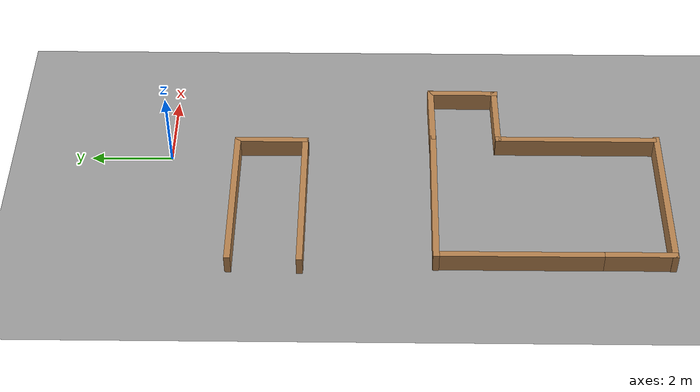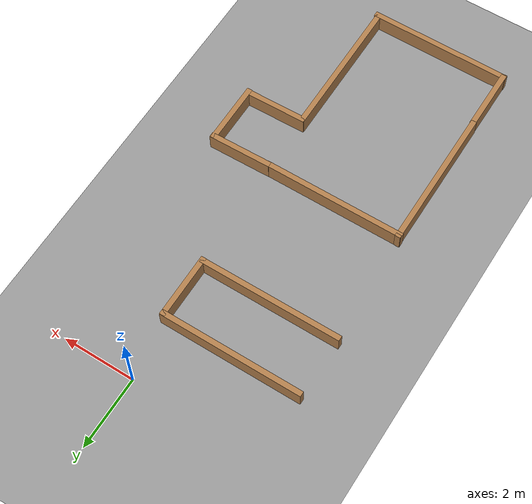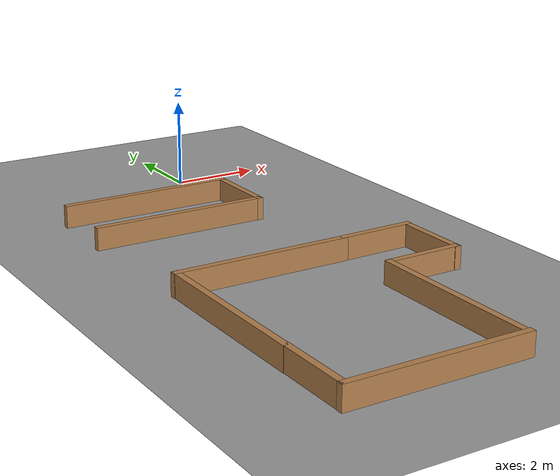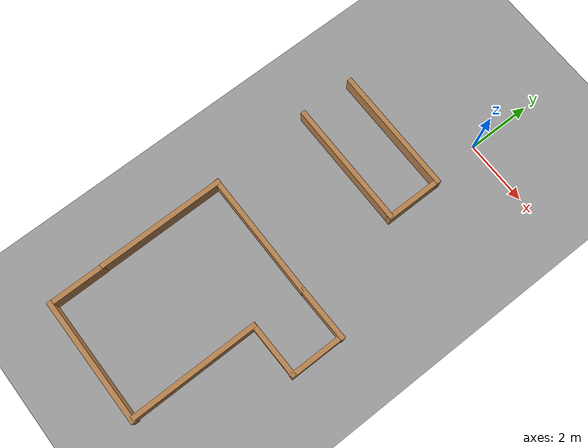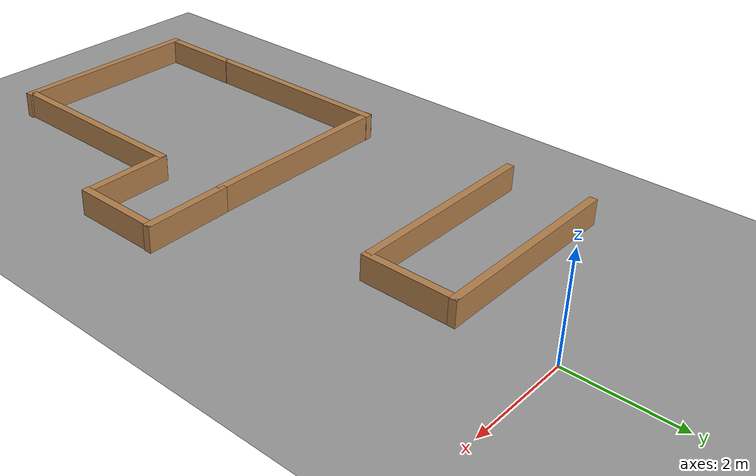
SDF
<sdf version="1.6">
 <world name="default">
  <light name="sun" type="directional">
   <pose>0 0 10 0 -0 0</pose>
   <diffuse>0.8 0.8 0.8 1</diffuse>
   <specular>0.2 0.2 0.2 1</specular>
   <attenuation>
    <range>1000</range>
    <constant>0.9</constant>
    <linear>0.01</linear>
    <quadratic>0.001</quadratic>
   </attenuation>
   <direction>0.5 0.1 -0.9</direction>
  </light>
  <scene><ambient>0.4 0.4 0.4 1</ambient><background>0.7 0.7 0.7 1</background><shadows>1</shadows></scene>
  <physics name="default_physics" default="0" type="ode">
   <max_step_size>0.01</max_step_size>
   <real_time_factor>1</real_time_factor>
   <real_time_update_rate>100</real_time_update_rate>
  </physics>
  <model name="ground_plane_0">
   <static>1</static>
   <link name="link">
    <collision name="collision">
     <geometry><plane><normal>0 0 1</normal><size>100 100</size></plane></geometry>
     <surface><friction><ode><mu>100</mu><mu2>50</mu2></ode></friction></surface>
    </collision>
    <visual name="visual">
     <cast_shadows>0</cast_shadows>
     <geometry><plane><normal>0 0 1</normal><size>100 100</size></plane></geometry>
     <material>
      <script><uri>file://media/materials/scripts/gazebo.material</uri><name>Gazebo/Grey</name></script>
     </material>
    </visual>
    <velocity_decay><linear>0</linear><angular>0</angular></velocity_decay>
   </link>
   <pose>0.497681 0 0 0 -0 0</pose>
  </model>
  <gravity>0 0 -9.8</gravity>
  <magnetic_field>6e-06 2.3e-05 -4.2e-05</magnetic_field>
  <atmosphere type="adiabatic"/>
  <spherical_coordinates>
   <surface_model>EARTH_WGS84</surface_model>
   <latitude_deg>0</latitude_deg>
   <longitude_deg>0</longitude_deg>
   <elevation>0</elevation>
   <heading_deg>0</heading_deg>
  </spherical_coordinates>
  <model name="turtlebot3_square_0">
   <link name="Wall_0">
    <pose>0 0.848118 0 0 -0 0</pose>
    <visual name="Wall_0_Visual">
     <pose>0 0 0.25 0 -0 0</pose>
     <geometry><box><size>4 0.15 0.5</size></box></geometry>
     <material>
      <script><uri>file://media/materials/scripts/gazebo.material</uri><name>Gazebo/Wood</name></script>
      <ambient>1 1 1 1</ambient>
      <diffuse>1 1 1 1</diffuse>
      <specular>0.2 0.2 0.2 1</specular>
      <emissive>0 0 0 1</emissive>
     </material>
    </visual>
    <collision name="Wall_0_Collision">
     <pose>0 0 0.25 0 -0 0</pose>
     <geometry><box><size>4 0.15 0.5</size></box></geometry>
     <surface>
      <friction>
       <ode><mu>1</mu><mu2>1</mu2><fdir1>0 0 0</fdir1><slip1>0</slip1><slip2>0</slip2></ode>
       <torsional>
        <coefficient>1</coefficient>
        <patch_radius>0</patch_radius>
        <surface_radius>0</surface_radius>
        <use_patch_radius>1</use_patch_radius>
        <ode><slip>0</slip></ode>
       </torsional>
      </friction>
      <bounce><restitution_coefficient>0</restitution_coefficient><threshold>1e+06</threshold></bounce>
      <contact>
       <collide_without_contact>0</collide_without_contact>
       <collide_without_contact_bitmask>1</collide_without_contact_bitmask>
       <collide_bitmask>1</collide_bitmask>
       <ode>
        <soft_cfm>0</soft_cfm>
        <soft_erp>0.2</soft_erp>
        <kp>1e+13</kp>
        <kd>1</kd>
        <max_vel>0.01</max_vel>
        <min_depth>0</min_depth>
       </ode>
       <bullet>
        <split_impulse>1</split_impulse>
        <split_impulse_penetration_threshold>-0.01</split_impulse_penetration_threshold>
        <soft_cfm>0</soft_cfm>
        <soft_erp>0.2</soft_erp>
        <kp>1e+13</kp>
        <kd>1</kd>
       </bullet>
      </contact>
     </surface>
    </collision>
   </link>
   <link name="Wall_3">
    <pose>-0.03332 -0.833491 0 0 -0 0</pose>
    <visual name="Wall_3_Visual">
     <pose>0 0 0.25 0 -0 0</pose>
     <geometry><box><size>4 0.15 0.5</size></box></geometry>
     <material>
      <script><uri>file://media/materials/scripts/gazebo.material</uri><name>Gazebo/Wood</name></script>
      <ambient>1 1 1 1</ambient>
      <diffuse>1 1 1 1</diffuse>
      <specular>0.2 0.2 0.2 1</specular>
      <emissive>0 0 0 1</emissive>
     </material>
    </visual>
    <collision name="Wall_3_Collision">
     <pose>0 0 0.25 0 -0 0</pose>
     <geometry><box><size>4 0.15 0.5</size></box></geometry>
     <surface>
      <friction>
       <ode><mu>1</mu><mu2>1</mu2><fdir1>0 0 0</fdir1><slip1>0</slip1><slip2>0</slip2></ode>
       <torsional>
        <coefficient>1</coefficient>
        <patch_radius>0</patch_radius>
        <surface_radius>0</surface_radius>
        <use_patch_radius>1</use_patch_radius>
        <ode><slip>0</slip></ode>
       </torsional>
      </friction>
      <bounce><restitution_coefficient>0</restitution_coefficient><threshold>1e+06</threshold></bounce>
      <contact>
       <collide_without_contact>0</collide_without_contact>
       <collide_without_contact_bitmask>1</collide_without_contact_bitmask>
       <collide_bitmask>1</collide_bitmask>
       <ode>
        <soft_cfm>0</soft_cfm>
        <soft_erp>0.2</soft_erp>
        <kp>1e+13</kp>
        <kd>1</kd>
        <max_vel>0.01</max_vel>
        <min_depth>0</min_depth>
       </ode>
       <bullet>
        <split_impulse>1</split_impulse>
        <split_impulse_penetration_threshold>-0.01</split_impulse_penetration_threshold>
        <soft_cfm>0</soft_cfm>
        <soft_erp>0.2</soft_erp>
        <kp>1e+13</kp>
        <kd>1</kd>
       </bullet>
      </contact>
     </surface>
    </collision>
   </link>
   <link name="Wall_4">
    <pose>1.925 0 0 0 -0 1.5708</pose>
    <inertial>
     <inertia><ixx>nan</ixx><ixy>0</ixy><ixz>0</ixz><iyy>nan</iyy><iyz>0</iyz><izz>nan</izz></inertia>
     <mass>0</mass>
    </inertial>
    <visual name="Wall_4_Visual">
     <pose>0 0 0.25 0 -0 0</pose>
     <geometry><box><size>1.82627 0.15 0.5</size></box></geometry>
     <material>
      <script><uri>file://media/materials/scripts/gazebo.material</uri><name>Gazebo/Wood</name></script>
      <ambient>1 1 1 1</ambient>
      <diffuse>1 1 1 1</diffuse>
      <specular>0.2 0.2 0.2 1</specular>
      <emissive>0 0 0 1</emissive>
     </material>
    </visual>
    <collision name="Wall_4_Collision">
     <pose>0 0 0.25 0 -0 0</pose>
     <geometry><box><size>1.82627 0.15 0.5</size></box></geometry>
     <surface>
      <friction>
       <ode><mu>1</mu><mu2>1</mu2><fdir1>0 0 0</fdir1><slip1>0</slip1><slip2>0</slip2></ode>
       <torsional>
        <coefficient>1</coefficient>
        <patch_radius>0</patch_radius>
        <surface_radius>0</surface_radius>
        <use_patch_radius>1</use_patch_radius>
        <ode><slip>0</slip></ode>
       </torsional>
      </friction>
      <bounce><restitution_coefficient>0</restitution_coefficient><threshold>1e+06</threshold></bounce>
      <contact>
       <collide_without_contact>0</collide_without_contact>
       <collide_without_contact_bitmask>1</collide_without_contact_bitmask>
       <collide_bitmask>1</collide_bitmask>
       <ode>
        <soft_cfm>0</soft_cfm>
        <soft_erp>0.2</soft_erp>
        <kp>1e+13</kp>
        <kd>1</kd>
        <max_vel>0.01</max_vel>
        <min_depth>0</min_depth>
       </ode>
       <bullet>
        <split_impulse>1</split_impulse>
        <split_impulse_penetration_threshold>-0.01</split_impulse_penetration_threshold>
        <soft_cfm>0</soft_cfm>
        <soft_erp>0.2</soft_erp>
        <kp>1e+13</kp>
        <kd>1</kd>
       </bullet>
      </contact>
     </surface>
    </collision>
   </link>
   <static>1</static>
   <pose>-1.70465 -2.50227 0 0 -0 0</pose>
  </model>
  <model name="turtlebot3_square_clone_0">
   <link name="Wall_0">
    <pose>0 0.819312 0 0 -0 0</pose>
    <visual name="Wall_0_Visual">
     <pose>0 0 0.25 0 -0 0</pose>
     <geometry><box><size>4 0.15 0.5</size></box></geometry>
     <material>
      <script><uri>file://media/materials/scripts/gazebo.material</uri><name>Gazebo/Wood</name></script>
      <ambient>1 1 1 1</ambient>
      <diffuse>1 1 1 1</diffuse>
      <specular>0.2 0.2 0.2 1</specular>
      <emissive>0 0 0 1</emissive>
     </material>
    </visual>
    <collision name="Wall_0_Collision">
     <pose>0 0 0.25 0 -0 0</pose>
     <geometry><box><size>4 0.15 0.5</size></box></geometry>
     <surface>
      <friction>
       <ode><mu>1</mu><mu2>1</mu2><fdir1>0 0 0</fdir1><slip1>0</slip1><slip2>0</slip2></ode>
       <torsional>
        <coefficient>1</coefficient>
        <patch_radius>0</patch_radius>
        <surface_radius>0</surface_radius>
        <use_patch_radius>1</use_patch_radius>
        <ode><slip>0</slip></ode>
       </torsional>
      </friction>
      <bounce><restitution_coefficient>0</restitution_coefficient><threshold>1e+06</threshold></bounce>
      <contact>
       <collide_without_contact>0</collide_without_contact>
       <collide_without_contact_bitmask>1</collide_without_contact_bitmask>
       <collide_bitmask>1</collide_bitmask>
       <ode>
        <soft_cfm>0</soft_cfm>
        <soft_erp>0.2</soft_erp>
        <kp>1e+13</kp>
        <kd>1</kd>
        <max_vel>0.01</max_vel>
        <min_depth>0</min_depth>
       </ode>
       <bullet>
        <split_impulse>1</split_impulse>
        <split_impulse_penetration_threshold>-0.01</split_impulse_penetration_threshold>
        <soft_cfm>0</soft_cfm>
        <soft_erp>0.2</soft_erp>
        <kp>1e+13</kp>
        <kd>1</kd>
       </bullet>
      </contact>
     </surface>
    </collision>
   </link>
   <link name="Wall_2">
    <pose>-1.91254 -1.09948 0 0 0 -1.5708</pose>
    <visual name="Wall_2_Visual">
     <pose>0 0 0.25 0 -0 0</pose>
     <geometry><box><size>4 0.15 0.5</size></box></geometry>
     <material>
      <script><uri>file://media/materials/scripts/gazebo.material</uri><name>Gazebo/Wood</name></script>
      <ambient>1 1 1 1</ambient>
      <diffuse>1 1 1 1</diffuse>
      <specular>0.2 0.2 0.2 1</specular>
      <emissive>0 0 0 1</emissive>
     </material>
    </visual>
    <collision name="Wall_2_Collision">
     <pose>0 0 0.25 0 -0 0</pose>
     <geometry><box><size>4 0.15 0.5</size></box></geometry>
     <surface>
      <friction>
       <ode><mu>1</mu><mu2>1</mu2><fdir1>0 0 0</fdir1><slip1>0</slip1><slip2>0</slip2></ode>
       <torsional>
        <coefficient>1</coefficient>
        <patch_radius>0</patch_radius>
        <surface_radius>0</surface_radius>
        <use_patch_radius>1</use_patch_radius>
        <ode><slip>0</slip></ode>
       </torsional>
      </friction>
      <bounce><restitution_coefficient>0</restitution_coefficient><threshold>1e+06</threshold></bounce>
      <contact>
       <collide_without_contact>0</collide_without_contact>
       <collide_without_contact_bitmask>1</collide_without_contact_bitmask>
       <collide_bitmask>1</collide_bitmask>
       <ode>
        <soft_cfm>0</soft_cfm>
        <soft_erp>0.2</soft_erp>
        <kp>1e+13</kp>
        <kd>1</kd>
        <max_vel>0.01</max_vel>
        <min_depth>0</min_depth>
       </ode>
       <bullet>
        <split_impulse>1</split_impulse>
        <split_impulse_penetration_threshold>-0.01</split_impulse_penetration_threshold>
        <soft_cfm>0</soft_cfm>
        <soft_erp>0.2</soft_erp>
        <kp>1e+13</kp>
        <kd>1</kd>
       </bullet>
      </contact>
     </surface>
    </collision>
   </link>
   <link name="Wall_2_clone">
    <pose>1.90158 -2.73141 0 0 0 -1.5708</pose>
    <visual name="Wall_2_Visual">
     <pose>0 0 0.25 0 -0 0</pose>
     <geometry><box><size>4 0.15 0.5</size></box></geometry>
     <material>
      <script><uri>file://media/materials/scripts/gazebo.material</uri><name>Gazebo/Wood</name></script>
      <ambient>1 1 1 1</ambient>
      <diffuse>1 1 1 1</diffuse>
      <specular>0.2 0.2 0.2 1</specular>
      <emissive>0 0 0 1</emissive>
      <shader type="pixel"/>
     </material>
    </visual>
    <collision name="Wall_2_Collision">
     <pose>0 0 0.25 0 -0 0</pose>
     <geometry><box><size>4 0.15 0.5</size></box></geometry>
     <surface>
      <friction>
       <ode><mu>1</mu><mu2>1</mu2><fdir1>0 0 0</fdir1><slip1>0</slip1><slip2>0</slip2></ode>
       <torsional>
        <coefficient>1</coefficient>
        <patch_radius>0</patch_radius>
        <surface_radius>0</surface_radius>
        <use_patch_radius>1</use_patch_radius>
        <ode><slip>0</slip></ode>
       </torsional>
      </friction>
      <bounce><restitution_coefficient>0</restitution_coefficient><threshold>1e+06</threshold></bounce>
      <contact>
       <collide_without_contact>0</collide_without_contact>
       <collide_without_contact_bitmask>1</collide_without_contact_bitmask>
       <collide_bitmask>1</collide_bitmask>
       <ode>
        <soft_cfm>0</soft_cfm>
        <soft_erp>0.2</soft_erp>
        <kp>1e+13</kp>
        <kd>1</kd>
        <max_vel>0.01</max_vel>
        <min_depth>0</min_depth>
       </ode>
       <bullet>
        <split_impulse>1</split_impulse>
        <split_impulse_penetration_threshold>-0.01</split_impulse_penetration_threshold>
        <soft_cfm>0</soft_cfm>
        <soft_erp>0.2</soft_erp>
        <kp>1e+13</kp>
        <kd>1</kd>
       </bullet>
      </contact>
     </surface>
    </collision>
   </link>
   <link name="Wall_3">
    <pose>0.012304 -4.74105 0 0 -0 0</pose>
    <visual name="Wall_3_Visual">
     <pose>0 0 0.25 0 -0 0</pose>
     <geometry><box><size>4 0.15 0.5</size></box></geometry>
     <material>
      <script><uri>file://media/materials/scripts/gazebo.material</uri><name>Gazebo/Wood</name></script>
      <ambient>1 1 1 1</ambient>
      <diffuse>1 1 1 1</diffuse>
      <specular>0.2 0.2 0.2 1</specular>
      <emissive>0 0 0 1</emissive>
     </material>
    </visual>
    <collision name="Wall_3_Collision">
     <pose>0 0 0.25 0 -0 0</pose>
     <geometry><box><size>4 0.15 0.5</size></box></geometry>
     <surface>
      <friction>
       <ode><mu>1</mu><mu2>1</mu2><fdir1>0 0 0</fdir1><slip1>0</slip1><slip2>0</slip2></ode>
       <torsional>
        <coefficient>1</coefficient>
        <patch_radius>0</patch_radius>
        <surface_radius>0</surface_radius>
        <use_patch_radius>1</use_patch_radius>
        <ode><slip>0</slip></ode>
       </torsional>
      </friction>
      <bounce><restitution_coefficient>0</restitution_coefficient><threshold>1e+06</threshold></bounce>
      <contact>
       <collide_without_contact>0</collide_without_contact>
       <collide_without_contact_bitmask>1</collide_without_contact_bitmask>
       <collide_bitmask>1</collide_bitmask>
       <ode>
        <soft_cfm>0</soft_cfm>
        <soft_erp>0.2</soft_erp>
        <kp>1e+13</kp>
        <kd>1</kd>
        <max_vel>0.01</max_vel>
        <min_depth>0</min_depth>
       </ode>
       <bullet>
        <split_impulse>1</split_impulse>
        <split_impulse_penetration_threshold>-0.01</split_impulse_penetration_threshold>
        <soft_cfm>0</soft_cfm>
        <soft_erp>0.2</soft_erp>
        <kp>1e+13</kp>
        <kd>1</kd>
       </bullet>
      </contact>
     </surface>
    </collision>
   </link>
   <link name="Wall_4">
    <pose>3.56699 0.036316 0 0 -0 1.5708</pose>
    <inertial>
     <inertia><ixx>nan</ixx><ixy>0</ixy><ixz>0</ixz><iyy>nan</iyy><iyz>0</iyz><izz>nan</izz></inertia>
     <mass>0</mass>
    </inertial>
    <visual name="Wall_4_Visual">
     <pose>0 0 0.25 0 -0 0</pose>
     <geometry><box><size>1.77482 0.15 0.5</size></box></geometry>
     <material>
      <script><uri>file://media/materials/scripts/gazebo.material</uri><name>Gazebo/Wood</name></script>
      <ambient>1 1 1 1</ambient>
      <diffuse>1 1 1 1</diffuse>
      <specular>0.2 0.2 0.2 1</specular>
      <emissive>0 0 0 1</emissive>
     </material>
    </visual>
    <collision name="Wall_4_Collision">
     <pose>0 0 0.25 0 -0 0</pose>
     <geometry><box><size>1.77482 0.15 0.5</size></box></geometry>
     <surface>
      <friction>
       <ode><mu>1</mu><mu2>1</mu2><fdir1>0 0 0</fdir1><slip1>0</slip1><slip2>0</slip2></ode>
       <torsional>
        <coefficient>1</coefficient>
        <patch_radius>0</patch_radius>
        <surface_radius>0</surface_radius>
        <use_patch_radius>1</use_patch_radius>
        <ode><slip>0</slip></ode>
       </torsional>
      </friction>
      <bounce><restitution_coefficient>0</restitution_coefficient><threshold>1e+06</threshold></bounce>
      <contact>
       <collide_without_contact>0</collide_without_contact>
       <collide_without_contact_bitmask>1</collide_without_contact_bitmask>
       <collide_bitmask>1</collide_bitmask>
       <ode>
        <soft_cfm>0</soft_cfm>
        <soft_erp>0.2</soft_erp>
        <kp>1e+13</kp>
        <kd>1</kd>
        <max_vel>0.01</max_vel>
        <min_depth>0</min_depth>
       </ode>
       <bullet>
        <split_impulse>1</split_impulse>
        <split_impulse_penetration_threshold>-0.01</split_impulse_penetration_threshold>
        <soft_cfm>0</soft_cfm>
        <soft_erp>0.2</soft_erp>
        <kp>1e+13</kp>
        <kd>1</kd>
       </bullet>
      </contact>
     </surface>
    </collision>
   </link>
   <link name="Wall_4_clone">
    <pose>-1.90316 -3.912 0 0 -0 1.5708</pose>
    <inertial>
     <inertia><ixx>nan</ixx><ixy>0</ixy><ixz>0</ixz><iyy>nan</iyy><iyz>0</iyz><izz>nan</izz></inertia>
     <mass>0</mass>
    </inertial>
    <visual name="Wall_4_Visual">
     <pose>0 0 0.25 0 -0 0</pose>
     <geometry><box><size>1.77482 0.15 0.5</size></box></geometry>
     <material>
      <script><uri>file://media/materials/scripts/gazebo.material</uri><name>Gazebo/Wood</name></script>
      <ambient>1 1 1 1</ambient>
      <diffuse>1 1 1 1</diffuse>
      <specular>0.2 0.2 0.2 1</specular>
      <emissive>0 0 0 1</emissive>
      <shader type="pixel"/>
     </material>
    </visual>
    <collision name="Wall_4_Collision">
     <pose>0 0 0.25 0 -0 0</pose>
     <geometry><box><size>1.77482 0.15 0.5</size></box></geometry>
     <surface>
      <friction>
       <ode><mu>1</mu><mu2>1</mu2><fdir1>0 0 0</fdir1><slip1>0</slip1><slip2>0</slip2></ode>
       <torsional>
        <coefficient>1</coefficient>
        <patch_radius>0</patch_radius>
        <surface_radius>0</surface_radius>
        <use_patch_radius>1</use_patch_radius>
        <ode><slip>0</slip></ode>
       </torsional>
      </friction>
      <bounce><restitution_coefficient>0</restitution_coefficient><threshold>1e+06</threshold></bounce>
      <contact>
       <collide_without_contact>0</collide_without_contact>
       <collide_without_contact_bitmask>1</collide_without_contact_bitmask>
       <collide_bitmask>1</collide_bitmask>
       <ode>
        <soft_cfm>0</soft_cfm>
        <soft_erp>0.2</soft_erp>
        <kp>1e+13</kp>
        <kd>1</kd>
        <max_vel>0.01</max_vel>
        <min_depth>0</min_depth>
       </ode>
       <bullet>
        <split_impulse>1</split_impulse>
        <split_impulse_penetration_threshold>-0.01</split_impulse_penetration_threshold>
        <soft_cfm>0</soft_cfm>
        <soft_erp>0.2</soft_erp>
        <kp>1e+13</kp>
        <kd>1</kd>
       </bullet>
      </contact>
     </surface>
    </collision>
   </link>
   <link name="Wall_4_clone_0">
    <pose>2.76882 0.840961 0 0 -0 0.018196</pose>
    <inertial>
     <inertia><ixx>nan</ixx><ixy>0</ixy><ixz>0</ixz><iyy>nan</iyy><iyz>0</iyz><izz>nan</izz></inertia>
     <mass>0</mass>
    </inertial>
    <visual name="Wall_4_Visual">
     <pose>0 0 0.25 0 -0 0</pose>
     <geometry><box><size>1.77482 0.15 0.5</size></box></geometry>
     <material>
      <script><uri>file://media/materials/scripts/gazebo.material</uri><name>Gazebo/Wood</name></script>
      <ambient>1 1 1 1</ambient>
      <diffuse>1 1 1 1</diffuse>
      <specular>0.2 0.2 0.2 1</specular>
      <emissive>0 0 0 1</emissive>
      <shader type="pixel"/>
     </material>
    </visual>
    <collision name="Wall_4_Collision">
     <pose>0 0 0.25 0 -0 0</pose>
     <geometry><box><size>1.77482 0.15 0.5</size></box></geometry>
     <surface>
      <friction>
       <ode><mu>1</mu><mu2>1</mu2><fdir1>0 0 0</fdir1><slip1>0</slip1><slip2>0</slip2></ode>
       <torsional>
        <coefficient>1</coefficient>
        <patch_radius>0</patch_radius>
        <surface_radius>0</surface_radius>
        <use_patch_radius>1</use_patch_radius>
        <ode><slip>0</slip></ode>
       </torsional>
      </friction>
      <bounce><restitution_coefficient>0</restitution_coefficient><threshold>1e+06</threshold></bounce>
      <contact>
       <collide_without_contact>0</collide_without_contact>
       <collide_without_contact_bitmask>1</collide_without_contact_bitmask>
       <collide_bitmask>1</collide_bitmask>
       <ode>
        <soft_cfm>0</soft_cfm>
        <soft_erp>0.2</soft_erp>
        <kp>1e+13</kp>
        <kd>1</kd>
        <max_vel>0.01</max_vel>
        <min_depth>0</min_depth>
       </ode>
       <bullet>
        <split_impulse>1</split_impulse>
        <split_impulse_penetration_threshold>-0.01</split_impulse_penetration_threshold>
        <soft_cfm>0</soft_cfm>
        <soft_erp>0.2</soft_erp>
        <kp>1e+13</kp>
        <kd>1</kd>
       </bullet>
      </contact>
     </surface>
    </collision>
   </link>
   <link name="Wall_4_clone_0_clone">
    <pose>2.72664 -0.77789 0 0 -0 0.018196</pose>
    <inertial>
     <inertia><ixx>nan</ixx><ixy>0</ixy><ixz>0</ixz><iyy>nan</iyy><iyz>0</iyz><izz>nan</izz></inertia>
     <mass>0</mass>
    </inertial>
    <visual name="Wall_4_Visual">
     <pose>0 0 0.25 0 -0 0</pose>
     <geometry><box><size>1.77482 0.15 0.5</size></box></geometry>
     <material>
      <script><uri>file://media/materials/scripts/gazebo.material</uri><name>Gazebo/Wood</name></script>
      <ambient>1 1 1 1</ambient>
      <diffuse>1 1 1 1</diffuse>
      <specular>0.2 0.2 0.2 1</specular>
      <emissive>0 0 0 1</emissive>
      <shader type="pixel"/>
     </material>
    </visual>
    <collision name="Wall_4_Collision">
     <pose>0 0 0.25 0 -0 0</pose>
     <geometry><box><size>1.77482 0.15 0.5</size></box></geometry>
     <surface>
      <friction>
       <ode><mu>1</mu><mu2>1</mu2><fdir1>0 0 0</fdir1><slip1>0</slip1><slip2>0</slip2></ode>
       <torsional>
        <coefficient>1</coefficient>
        <patch_radius>0</patch_radius>
        <surface_radius>0</surface_radius>
        <use_patch_radius>1</use_patch_radius>
        <ode><slip>0</slip></ode>
       </torsional>
      </friction>
      <bounce><restitution_coefficient>0</restitution_coefficient><threshold>1e+06</threshold></bounce>
      <contact>
       <collide_without_contact>0</collide_without_contact>
       <collide_without_contact_bitmask>1</collide_without_contact_bitmask>
       <collide_bitmask>1</collide_bitmask>
       <ode>
        <soft_cfm>0</soft_cfm>
        <soft_erp>0.2</soft_erp>
        <kp>1e+13</kp>
        <kd>1</kd>
        <max_vel>0.01</max_vel>
        <min_depth>0</min_depth>
       </ode>
       <bullet>
        <split_impulse>1</split_impulse>
        <split_impulse_penetration_threshold>-0.01</split_impulse_penetration_threshold>
        <soft_cfm>0</soft_cfm>
        <soft_erp>0.2</soft_erp>
        <kp>1e+13</kp>
        <kd>1</kd>
       </bullet>
      </contact>
     </surface>
    </collision>
   </link>
   <static>1</static>
   <pose>-1.60659 -7.33488 0 0 -0 0</pose>
  </model>
 </world>
</sdf>
